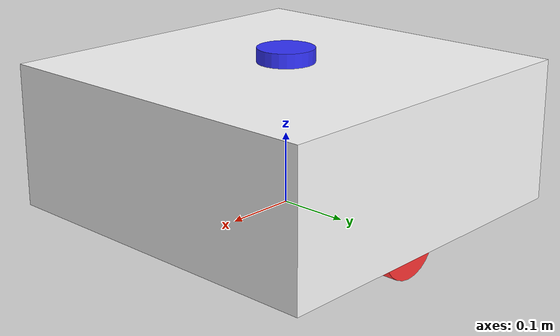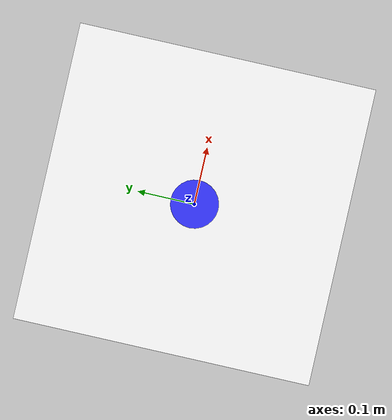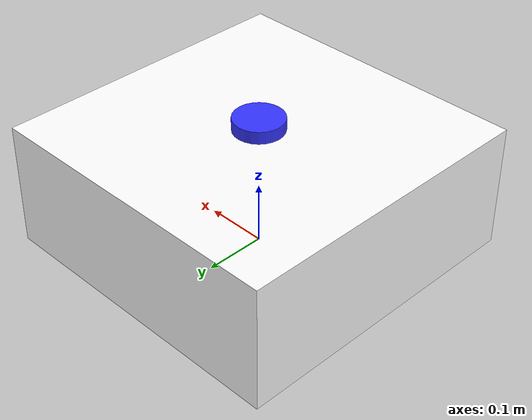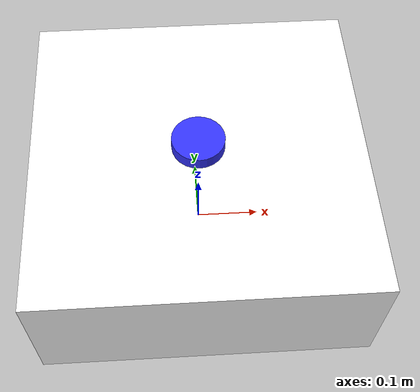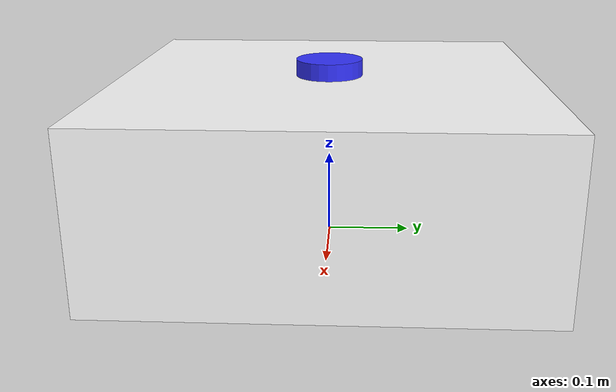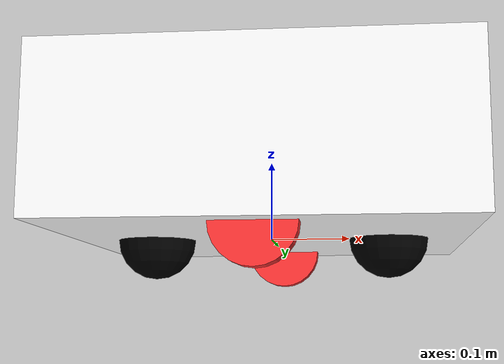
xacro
<?xml version="1.0"?>
<robot xmlns:xacro="http://www.ros.org/wiki/xacro"  name="robot">

    <xacro:include filename="robot_core.xacro" />

    <xacro:include filename="kendali_ros2.xacro"/>

    <xacro:include filename="lidar.xacro"/>

</robot>

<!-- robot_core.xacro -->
<robot xmlns:xacro="http://www.ros.org/wiki/xacro" >

    <xacro:include filename="inertial_macros.xacro"/>

    <material name="white">
        <color rgba="1 1 1 1" />
    </material>

    <material name="red">
        <color rgba="1 0.2 0.2 1"/>
    </material>

    <material name="blue">
        <color rgba="0.2 0.2 1 1"/>
    </material>

    <material name="black">
        <color rgba="0 0 0 1"/>
    </material>

    <!-- BASE LINK -->

    <link name="robot_base">

    </link>

    <!-- CHASSIS LINK -->

    <joint name="chassis_joint" type="fixed">
        <parent link="robot_base"/>
        <child link="chassis"/>
        <origin xyz="-0.25 0 0"/>
    </joint>

    <link name="chassis">
        <visual>
            <origin xyz="0.25 0 0.1"/>
            <geometry>
                <box size="0.5 0.5 0.2"/>
            </geometry>
            <material name="white"/>
        </visual>
        <collision>
            <origin xyz="0.25 0 0.1"/>
            <geometry>
                <box size="0.5 0.5 0.2"/>
            </geometry>
        </collision>
        <xacro:inertial_box mass="0.5" x="0.5" y="0.5" z="0.2">
            <origin xyz="0.25 0 0.1" rpy="0 0 0"/>
        </xacro:inertial_box>
    </link>

    <gazebo reference="chassis">
        <material>Gazebo/White</material>
    </gazebo>

    <!-- LEFT WHEEL LINK -->

    <joint name="left_wheel_joint" type="continuous">
        <parent link="robot_base"/>
        <child link="left_wheel"/>
        <origin xyz="0 0.2 0" rpy="-${pi/2} 0 0" />
        <axis xyz="0 0 1"/>
    </joint>

    <link name="left_wheel">
        <visual>
            <geometry>
                <cylinder radius="0.05" length="0.03"/>
            </geometry>
            <material name="red"/>
        </visual>
        <collision>
            <geometry>
                <cylinder radius="0.05" length="0.03"/>
            </geometry>
        </collision>
        <xacro:inertial_cylinder mass="0.1" radius="0.05" length="0.03">
            <origin xyz="0 0 0" rpy="0 0 0"/>
        </xacro:inertial_cylinder>
    </link>

    <gazebo reference="left_wheel">
        <material>Gazebo/Red</material>
    </gazebo>

    <!-- RIGHT WHEEL LINK -->

    <joint name="right_wheel_joint" type="continuous">
        <parent link="robot_base"/>
        <child link="right_wheel"/>
        <origin xyz="0 -0.2 0" rpy="${pi/2} 0 0" />
        <axis xyz="0 0 -1"/>
    </joint>

    <link name="right_wheel">
        <visual>
            <geometry>
                <cylinder radius="0.05" length="0.03"/>
            </geometry>
            <material name="red"/>
        </visual>
        <collision>
            <geometry>
                <cylinder radius="0.05" length="0.03"/>
            </geometry>
        </collision>
        <xacro:inertial_cylinder mass="0.1" radius="0.05" length="0.03">
            <origin xyz="0 0 0" rpy="0 0 0"/>
        </xacro:inertial_cylinder>
    </link>

    <gazebo reference="right_wheel">
        <material>Gazebo/Red</material>
    </gazebo>

    <!-- CASTER WHEEL LINK -->

    <joint name="caster_wheel_f_joint" type="fixed">
        <parent link="chassis"/>
        <child link="caster_wheel_f"/>
        <origin xyz="0.4 0 0"/>
    </joint>

    <link name="caster_wheel_f">
        <visual>
            <geometry>
                <sphere radius="0.05"/>
            </geometry>
            <material name="black"/>
        </visual>
        <collision>
            <geometry>
                <sphere radius="0.05"/>
            </geometry>
        </collision>
        <xacro:inertial_sphere mass="0.1" radius="0.05">
            <origin xyz="0 0 0" rpy="0 0 0"/>
        </xacro:inertial_sphere>
    </link>

    <gazebo reference="caster_wheel_f">
        <material>Gazebo/Black</material>
        <mu1 value="0.001"/>
        <mu2 value="0.001"/>
    </gazebo>

    <!-- CASTER WHEEL LINK -->

    <joint name="caster_wheel_b_joint" type="fixed">
        <parent link="chassis"/>
        <child link="caster_wheel_b"/>
        <origin xyz="0.1 0 0"/>
    </joint>

    <link name="caster_wheel_b">
        <visual>
            <geometry>
                <sphere radius="0.05"/>
            </geometry>
            <material name="black"/>
        </visual>
        <collision>
            <geometry>
                <sphere radius="0.05"/>
            </geometry>
        </collision>
        <xacro:inertial_sphere mass="0.1" radius="0.05">
            <origin xyz="0 0 0" rpy="0 0 0"/>
        </xacro:inertial_sphere>
    </link>

    <gazebo reference="caster_wheel_b">
        <material>Gazebo/Black</material>
        <mu1 value="0.001"/>
        <mu2 value="0.001"/>
    </gazebo>

</robot>

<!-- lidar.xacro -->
<robot xmlns:xacro="http://www.ros.org/wiki/xacro">

    <joint name="lidar_joint" type="fixed">
        <parent link="chassis"/>
        <child link="lidar"/>
        <origin xyz="0.25 0 0.2" rpy="0 0 0" />
    </joint>

    <link name="lidar">
        <visual>
            <geometry>
                <cylinder radius="0.04" length="0.04"/>
            </geometry>
            <material name="blue"/>
        </visual>
        <collision>
            <geometry>
                <cylinder radius="0.04" length="0.04"/>
            </geometry>
        </collision>
        <xacro:inertial_cylinder mass="0.1" radius="0.04" length="0.04">
            <origin xyz="0 0 0" rpy="0 0 0"/>
        </xacro:inertial_cylinder>
    </link>

    <gazebo reference="lidar">
        <material>Gazebo/Blue</material>
        <sensor name="laser" type="ray">
            <pose> 0 0 0 0 0 0 </pose>
            <visualize>true</visualize>
            <update_rate>10</update_rate>
            <ray>
                <scan>
                    <horizontal>
                        <samples>360</samples>
                        <resolution>1</resolution>
                        <min_angle>-3.14</min_angle>
                        <max_angle>3.14</max_angle>
                    </horizontal>
                </scan>
                <range>
                    <min>0.4</min>
                    <max>12</max>
                    <resolution>0.01</resolution>
                </range>
            </ray>
            <plugin name="lidar_controller" filename="libgazebo_ros_ray_sensor.so">
                <ros>
                    <argument>~/out:=scan</argument>
                </ros>
                <output_type>sensor_msgs/LaserScan</output_type>
                <frame_name>lidar</frame_name>
            </plugin>
        </sensor>
    </gazebo>

</robot>
